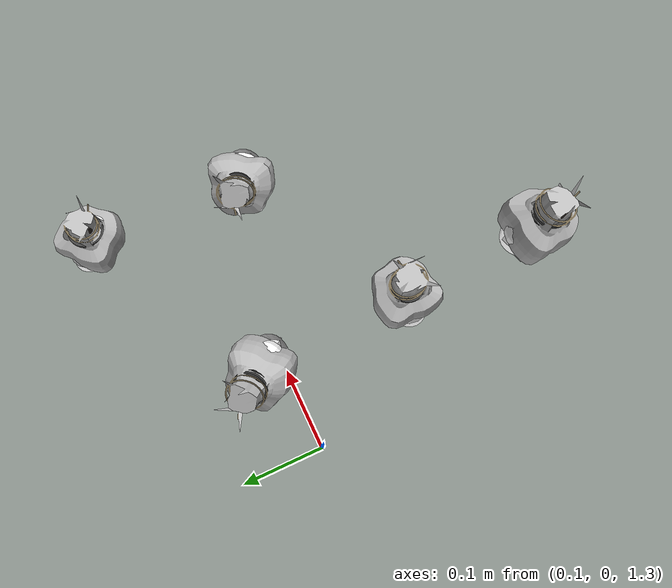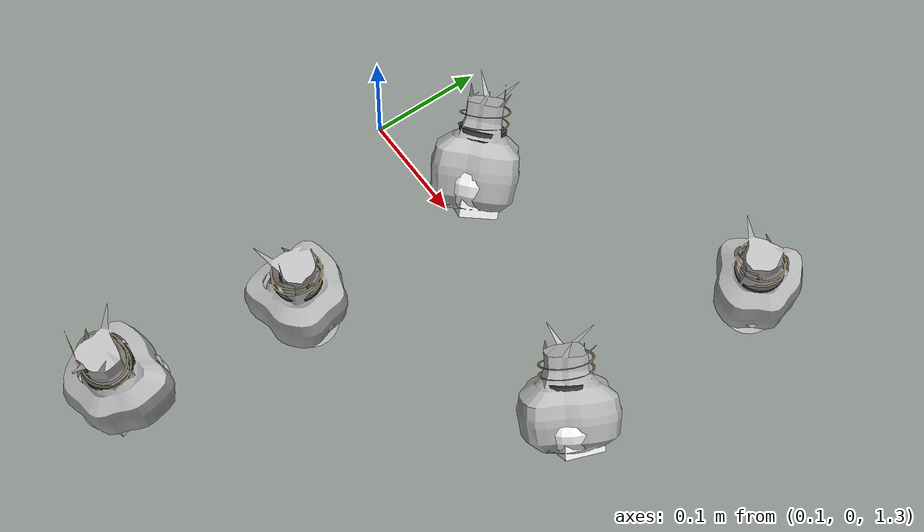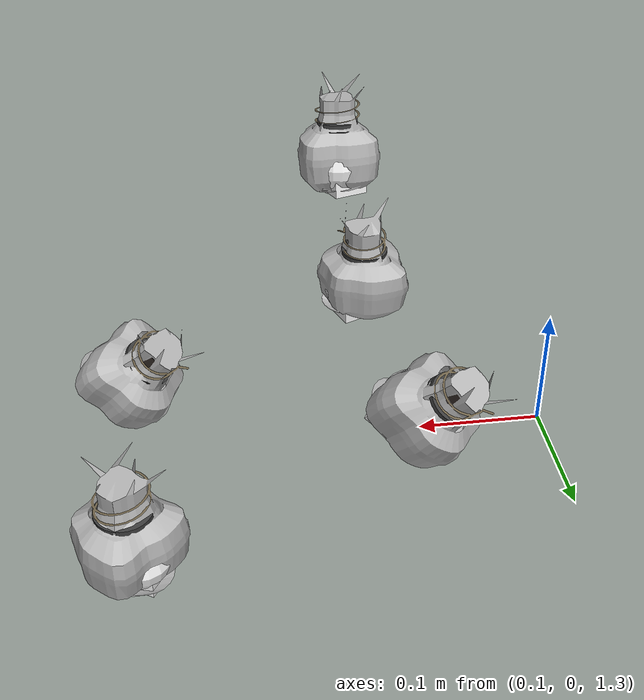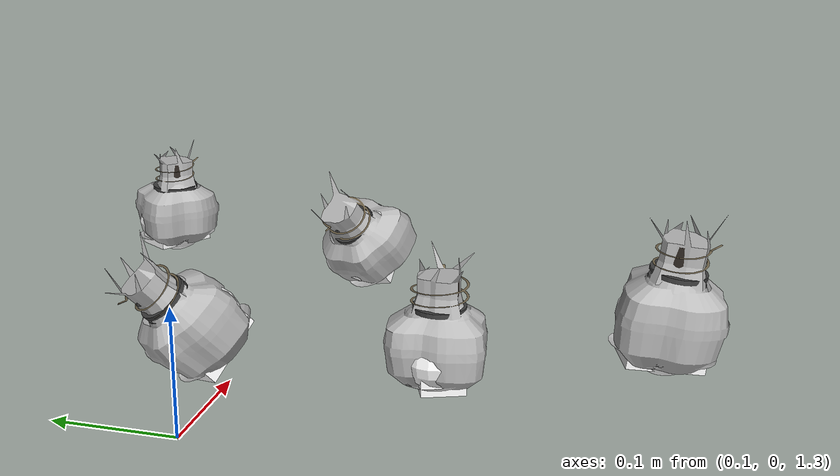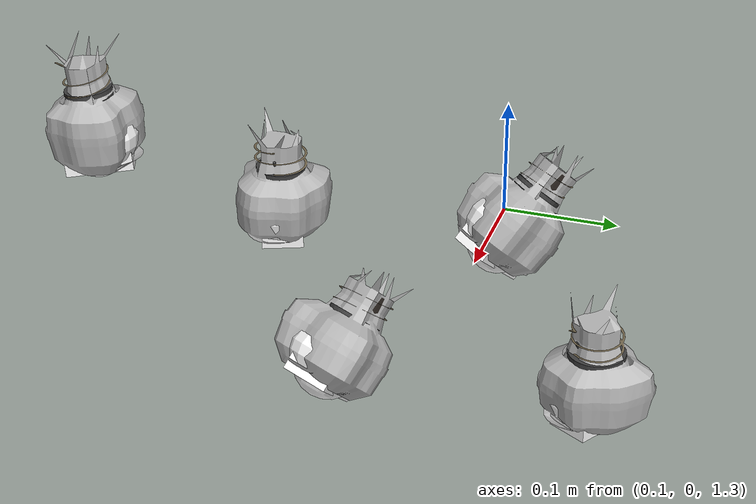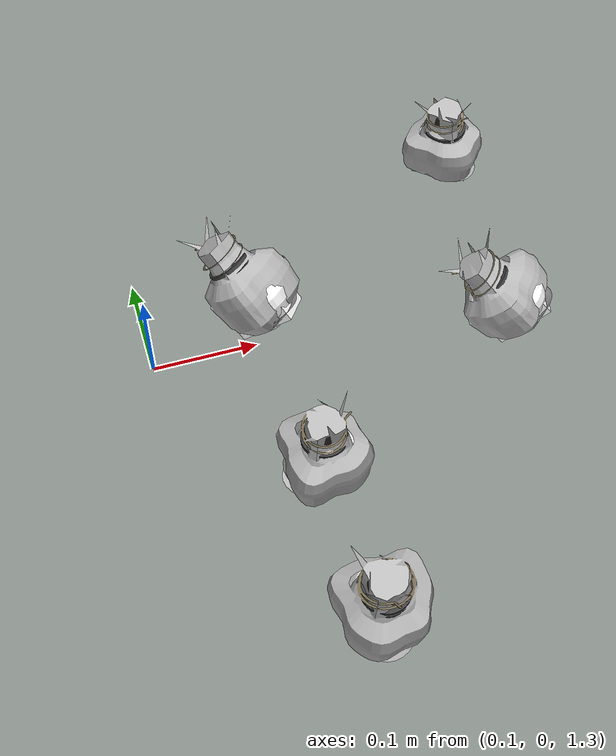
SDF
<sdf version="1.11">
 <world name="peach_orchard">
  <model name="ground">
   <static>true</static>
   <link name="link">
    <visual name="soil">
     <geometry><plane><normal>0 0 1</normal><size>32 22</size></plane></geometry>
     <material>
      <ambient>1 1 1 1</ambient>
      <diffuse>1 1 1 1</diffuse>
      <specular>0.1 0.1 0.1 1</specular>
      <pbr>
       <metal>
        <albedo_map>textures/soil_albedo.png</albedo_map>
        <normal_map type="tangent">textures/soil_normal.png</normal_map>
        <roughness>0.95</roughness>
        <metalness>0</metalness>
       </metal>
      </pbr>
     </material>
    </visual>
    <collision name="c_soil">
     <geometry><plane><normal>0 0 1</normal><size>32 22</size></plane></geometry>
    </collision>
   </link>
  </model>
  <model name="peach_tree_r2_t3_00">
   <pose>0.432889 0.147746 1.3245 0 0.0119992 -0.893221</pose>
   <static>true</static>
   <link name="bag">
    <visual name="bag_mesh">
     <pose>0 0 0.0400128 0 0 -0</pose>
     <geometry>
      <mesh><uri>model://peach_sim/meshes/bagged_peach.glb</uri><scale>0.931084 1.05038 0.909381</scale></mesh>
     </geometry>
    </visual>
    <visual name="body">
     <pose>0 0 0.0220128 0 0 0</pose>
     <geometry><ellipsoid><radii>0.0349157 0.0273099 0.0237738</radii></ellipsoid></geometry>
     <material>
      <ambient>1 1 1 1</ambient>
      <diffuse>1 1 1 1</diffuse>
      <specular>0.1 0.1 0.1 1</specular>
      <pbr>
       <metal>
        <albedo_map>textures/paper_bag_albedo.png</albedo_map>
        <normal_map type="tangent">textures/paper_bag_normal.png</normal_map>
        <roughness>0.72</roughness>
        <metalness>0</metalness>
       </metal>
      </pbr>
     </material>
    </visual>
    <visual name="bottom_fold">
     <pose>0 0 0.012 0 0 0.35</pose>
     <geometry><box><size>0.0541193 0.0314064 0.022</size></box></geometry>
     <material>
      <ambient>1 1 1 1</ambient>
      <diffuse>1 1 1 1</diffuse>
      <specular>0.1 0.1 0.1 1</specular>
      <pbr>
       <metal>
        <albedo_map>textures/paper_bag_albedo.png</albedo_map>
        <normal_map type="tangent">textures/paper_bag_normal.png</normal_map>
        <roughness>0.8</roughness>
        <metalness>0</metalness>
       </metal>
      </pbr>
     </material>
    </visual>
    <visual name="fruit">
     <pose>0 0 0.0206104 0 0 0</pose>
     <geometry><sphere><radius>0.0276748</radius></sphere></geometry>
     <material>
      <ambient>1 1 1 1</ambient>
      <diffuse>1 1 1 1</diffuse>
      <specular>0.1 0.1 0.1 1</specular>
      <pbr>
       <metal>
        <albedo_map>textures/fruit_skin_albedo.png</albedo_map>
        <normal_map type="tangent">textures/fruit_skin_normal.png</normal_map>
        <roughness>0.55</roughness>
        <metalness>0</metalness>
       </metal>
      </pbr>
     </material>
    </visual>
    <visual name="neck">
     <pose>0 0 0.0530255 0 0 0</pose>
     <geometry><cylinder><radius>0.013</radius><length>0.018</length></cylinder></geometry>
     <material>
      <ambient>1 1 1 1</ambient>
      <diffuse>1 1 1 1</diffuse>
      <specular>0.1 0.1 0.1 1</specular>
      <pbr>
       <metal>
        <albedo_map>textures/paper_bag_albedo.png</albedo_map>
        <normal_map type="tangent">textures/paper_bag_normal.png</normal_map>
        <roughness>0.75</roughness>
        <metalness>0</metalness>
       </metal>
      </pbr>
     </material>
    </visual>
    <visual name="gather">
     <pose>0 0 0.0340255 0 0 0</pose>
     <geometry><cylinder><radius>0.019</radius><length>0.02</length></cylinder></geometry>
     <material>
      <ambient>1 1 1 1</ambient>
      <diffuse>1 1 1 1</diffuse>
      <specular>0.1 0.1 0.1 1</specular>
      <pbr>
       <metal>
        <albedo_map>textures/paper_bag_albedo.png</albedo_map>
        <normal_map type="tangent">textures/paper_bag_normal.png</normal_map>
        <roughness>0.8</roughness>
        <metalness>0</metalness>
       </metal>
      </pbr>
     </material>
    </visual>
    <visual name="inner_paper">
     <pose>0 0 0.0580255 0 0 0</pose>
     <geometry><cylinder><radius>0.01</radius><length>0.008</length></cylinder></geometry>
     <material>
      <ambient>0.180392 0.14902 0.133333 1</ambient>
      <diffuse>0.180392 0.14902 0.133333 1</diffuse>
      <specular>0.1 0.1 0.1 1</specular>
     </material>
    </visual>
    <visual name="wire_0">
     <pose>0 0 0.0480255 0 0 0</pose>
     <geometry><cylinder><radius>0.0205</radius><length>0.0035</length></cylinder></geometry>
     <material>
      <ambient>0.25 0.25 0.25 1</ambient>
      <diffuse>0.25 0.25 0.25 1</diffuse>
      <specular>0.1 0.1 0.1 1</specular>
     </material>
    </visual>
    <visual name="wire_1">
     <pose>0 0 0.0550255 0 0 0</pose>
     <geometry><cylinder><radius>0.0205</radius><length>0.0035</length></cylinder></geometry>
     <material>
      <ambient>0.25 0.25 0.25 1</ambient>
      <diffuse>0.25 0.25 0.25 1</diffuse>
      <specular>0.1 0.1 0.1 1</specular>
     </material>
    </visual>
    <visual name="wire_tail">
     <pose>0.01 0 0.0560255 0 0.521618 0</pose>
     <geometry><cylinder><radius>0.0012</radius><length>0.026</length></cylinder></geometry>
     <material>
      <ambient>0.25 0.25 0.25 1</ambient>
      <diffuse>0.25 0.25 0.25 1</diffuse>
      <specular>0.1 0.1 0.1 1</specular>
     </material>
    </visual>
    <collision name="c_body">
     <pose>0 0 0.0220128 0 0 0</pose>
     <geometry><cylinder><radius>0.0349157</radius><length>0.0440255</length></cylinder></geometry>
    </collision>
   </link>
  </model>
  <model name="peach_tree_r2_t3_01">
   <pose>0.448265 -0.0536551 1.32065 0 0.729922 2.61008</pose>
   <static>true</static>
   <link name="bag">
    <visual name="bag_mesh">
     <pose>0 0 0.0408624 0 0 0</pose>
     <geometry>
      <mesh><uri>model://peach_sim/meshes/bagged_peach.glb</uri><scale>0.970255 1.19225 0.928691</scale></mesh>
     </geometry>
    </visual>
    <visual name="body">
     <pose>0 0 0.0228624 0 0 0</pose>
     <geometry><ellipsoid><radii>0.0363846 0.0309986 0.0246914</radii></ellipsoid></geometry>
     <material>
      <ambient>1 1 1 1</ambient>
      <diffuse>1 1 1 1</diffuse>
      <specular>0.1 0.1 0.1 1</specular>
      <pbr>
       <metal>
        <albedo_map>textures/paper_bag_albedo.png</albedo_map>
        <normal_map type="tangent">textures/paper_bag_normal.png</normal_map>
        <roughness>0.72</roughness>
        <metalness>0</metalness>
       </metal>
      </pbr>
     </material>
    </visual>
    <visual name="bottom_fold">
     <pose>0 0 0.012 0 0 0.35</pose>
     <geometry><box><size>0.0563961 0.0356484 0.022</size></box></geometry>
     <material>
      <ambient>1 1 1 1</ambient>
      <diffuse>1 1 1 1</diffuse>
      <specular>0.1 0.1 0.1 1</specular>
      <pbr>
       <metal>
        <albedo_map>textures/paper_bag_albedo.png</albedo_map>
        <normal_map type="tangent">textures/paper_bag_normal.png</normal_map>
        <roughness>0.8</roughness>
        <metalness>0</metalness>
       </metal>
      </pbr>
     </material>
    </visual>
    <visual name="fruit">
     <pose>0 0 0.0197073 0 0 0</pose>
     <geometry><sphere><radius>0.0267356</radius></sphere></geometry>
     <material>
      <ambient>1 1 1 1</ambient>
      <diffuse>1 1 1 1</diffuse>
      <specular>0.1 0.1 0.1 1</specular>
      <pbr>
       <metal>
        <albedo_map>textures/fruit_skin_albedo.png</albedo_map>
        <normal_map type="tangent">textures/fruit_skin_normal.png</normal_map>
        <roughness>0.55</roughness>
        <metalness>0</metalness>
       </metal>
      </pbr>
     </material>
    </visual>
    <visual name="neck">
     <pose>0 0 0.0547248 0 0 0</pose>
     <geometry><cylinder><radius>0.013</radius><length>0.018</length></cylinder></geometry>
     <material>
      <ambient>1 1 1 1</ambient>
      <diffuse>1 1 1 1</diffuse>
      <specular>0.1 0.1 0.1 1</specular>
      <pbr>
       <metal>
        <albedo_map>textures/paper_bag_albedo.png</albedo_map>
        <normal_map type="tangent">textures/paper_bag_normal.png</normal_map>
        <roughness>0.75</roughness>
        <metalness>0</metalness>
       </metal>
      </pbr>
     </material>
    </visual>
    <visual name="gather">
     <pose>0 0 0.0357248 0 0 0</pose>
     <geometry><cylinder><radius>0.019</radius><length>0.02</length></cylinder></geometry>
     <material>
      <ambient>1 1 1 1</ambient>
      <diffuse>1 1 1 1</diffuse>
      <specular>0.1 0.1 0.1 1</specular>
      <pbr>
       <metal>
        <albedo_map>textures/paper_bag_albedo.png</albedo_map>
        <normal_map type="tangent">textures/paper_bag_normal.png</normal_map>
        <roughness>0.8</roughness>
        <metalness>0</metalness>
       </metal>
      </pbr>
     </material>
    </visual>
    <visual name="inner_paper">
     <pose>0 0 0.0597248 0 0 0</pose>
     <geometry><cylinder><radius>0.01</radius><length>0.008</length></cylinder></geometry>
     <material>
      <ambient>0.180392 0.14902 0.133333 1</ambient>
      <diffuse>0.180392 0.14902 0.133333 1</diffuse>
      <specular>0.1 0.1 0.1 1</specular>
     </material>
    </visual>
    <visual name="wire_0">
     <pose>0 0 0.0497248 0 0 0</pose>
     <geometry><cylinder><radius>0.0205</radius><length>0.0035</length></cylinder></geometry>
     <material>
      <ambient>0.25 0.25 0.25 1</ambient>
      <diffuse>0.25 0.25 0.25 1</diffuse>
      <specular>0.1 0.1 0.1 1</specular>
     </material>
    </visual>
    <visual name="wire_1">
     <pose>0 0 0.0567248 0 0 0</pose>
     <geometry><cylinder><radius>0.0205</radius><length>0.0035</length></cylinder></geometry>
     <material>
      <ambient>0.25 0.25 0.25 1</ambient>
      <diffuse>0.25 0.25 0.25 1</diffuse>
      <specular>0.1 0.1 0.1 1</specular>
     </material>
    </visual>
    <visual name="wire_tail">
     <pose>0.01 0 0.0577248 0 0.521618 0</pose>
     <geometry><cylinder><radius>0.0012</radius><length>0.026</length></cylinder></geometry>
     <material>
      <ambient>0.25 0.25 0.25 1</ambient>
      <diffuse>0.25 0.25 0.25 1</diffuse>
      <specular>0.1 0.1 0.1 1</specular>
     </material>
    </visual>
    <collision name="c_body">
     <pose>0 0 0.0228624 0 0 0</pose>
     <geometry><cylinder><radius>0.0363846</radius><length>0.0457248</length></cylinder></geometry>
    </collision>
   </link>
  </model>
  <model name="peach_tree_r2_t3_07">
   <pose>0.22 0.0128864 1.31573 0 0.729116 2.31192</pose>
   <static>true</static>
   <link name="bag">
    <visual name="bag_mesh">
     <pose>0 0 0.0481572 0 0 0</pose>
     <geometry>
      <mesh><uri>model://peach_sim/meshes/bagged_peach.glb</uri><scale>1.0124 1.12521 1.09448</scale></mesh>
     </geometry>
    </visual>
    <visual name="body">
     <pose>0 0 0.0301572 0 0 0</pose>
     <geometry><ellipsoid><radii>0.0379649 0.0292556 0.0325698</radii></ellipsoid></geometry>
     <material>
      <ambient>1 1 1 1</ambient>
      <diffuse>1 1 1 1</diffuse>
      <specular>0.1 0.1 0.1 1</specular>
      <pbr>
       <metal>
        <albedo_map>textures/paper_bag_albedo.png</albedo_map>
        <normal_map type="tangent">textures/paper_bag_normal.png</normal_map>
        <roughness>0.72</roughness>
        <metalness>0</metalness>
       </metal>
      </pbr>
     </material>
    </visual>
    <visual name="bottom_fold">
     <pose>0 0 0.012 0 0 0.35</pose>
     <geometry><box><size>0.0588456 0.0336439 0.022</size></box></geometry>
     <material>
      <ambient>1 1 1 1</ambient>
      <diffuse>1 1 1 1</diffuse>
      <specular>0.1 0.1 0.1 1</specular>
      <pbr>
       <metal>
        <albedo_map>textures/paper_bag_albedo.png</albedo_map>
        <normal_map type="tangent">textures/paper_bag_normal.png</normal_map>
        <roughness>0.8</roughness>
        <metalness>0</metalness>
       </metal>
      </pbr>
     </material>
    </visual>
    <visual name="fruit">
     <pose>0 0 0.0183397 0 0 0</pose>
     <geometry><sphere><radius>0.0253133</radius></sphere></geometry>
     <material>
      <ambient>1 1 1 1</ambient>
      <diffuse>1 1 1 1</diffuse>
      <specular>0.1 0.1 0.1 1</specular>
      <pbr>
       <metal>
        <albedo_map>textures/fruit_skin_albedo.png</albedo_map>
        <normal_map type="tangent">textures/fruit_skin_normal.png</normal_map>
        <roughness>0.55</roughness>
        <metalness>0</metalness>
       </metal>
      </pbr>
     </material>
    </visual>
    <visual name="neck">
     <pose>0 0 0.0693144 0 0 0</pose>
     <geometry><cylinder><radius>0.013</radius><length>0.018</length></cylinder></geometry>
     <material>
      <ambient>1 1 1 1</ambient>
      <diffuse>1 1 1 1</diffuse>
      <specular>0.1 0.1 0.1 1</specular>
      <pbr>
       <metal>
        <albedo_map>textures/paper_bag_albedo.png</albedo_map>
        <normal_map type="tangent">textures/paper_bag_normal.png</normal_map>
        <roughness>0.75</roughness>
        <metalness>0</metalness>
       </metal>
      </pbr>
     </material>
    </visual>
    <visual name="gather">
     <pose>0 0 0.0503144 0 0 0</pose>
     <geometry><cylinder><radius>0.019</radius><length>0.02</length></cylinder></geometry>
     <material>
      <ambient>1 1 1 1</ambient>
      <diffuse>1 1 1 1</diffuse>
      <specular>0.1 0.1 0.1 1</specular>
      <pbr>
       <metal>
        <albedo_map>textures/paper_bag_albedo.png</albedo_map>
        <normal_map type="tangent">textures/paper_bag_normal.png</normal_map>
        <roughness>0.8</roughness>
        <metalness>0</metalness>
       </metal>
      </pbr>
     </material>
    </visual>
    <visual name="inner_paper">
     <pose>0 0 0.0743144 0 0 0</pose>
     <geometry><cylinder><radius>0.01</radius><length>0.008</length></cylinder></geometry>
     <material>
      <ambient>0.180392 0.14902 0.133333 1</ambient>
      <diffuse>0.180392 0.14902 0.133333 1</diffuse>
      <specular>0.1 0.1 0.1 1</specular>
     </material>
    </visual>
    <visual name="wire_0">
     <pose>0 0 0.0643144 0 0 0</pose>
     <geometry><cylinder><radius>0.0205</radius><length>0.0035</length></cylinder></geometry>
     <material>
      <ambient>0.25 0.25 0.25 1</ambient>
      <diffuse>0.25 0.25 0.25 1</diffuse>
      <specular>0.1 0.1 0.1 1</specular>
     </material>
    </visual>
    <visual name="wire_1">
     <pose>0 0 0.0713144 0 0 0</pose>
     <geometry><cylinder><radius>0.0205</radius><length>0.0035</length></cylinder></geometry>
     <material>
      <ambient>0.25 0.25 0.25 1</ambient>
      <diffuse>0.25 0.25 0.25 1</diffuse>
      <specular>0.1 0.1 0.1 1</specular>
     </material>
    </visual>
    <visual name="wire_tail">
     <pose>0.01 0 0.0723144 0 0.521618 0</pose>
     <geometry><cylinder><radius>0.0012</radius><length>0.026</length></cylinder></geometry>
     <material>
      <ambient>0.25 0.25 0.25 1</ambient>
      <diffuse>0.25 0.25 0.25 1</diffuse>
      <specular>0.1 0.1 0.1 1</specular>
     </material>
    </visual>
    <collision name="c_body">
     <pose>0 0 0.0301572 0 0 0</pose>
     <geometry><cylinder><radius>0.0379649</radius><length>0.0603144</length></cylinder></geometry>
    </collision>
   </link>
  </model>
  <model name="peach_tree_r2_t3_08">
   <pose>0.22 -0.161896 1.31108 0 0.00292688 0.0273397</pose>
   <static>true</static>
   <link name="bag">
    <visual name="bag_mesh">
     <pose>0 0 0.0430792 0 0 0</pose>
     <geometry>
      <mesh><uri>model://peach_sim/meshes/bagged_peach.glb</uri><scale>0.987207 1.14265 0.979074</scale></mesh>
     </geometry>
    </visual>
    <visual name="body">
     <pose>0 0 0.0250792 0 0 0</pose>
     <geometry><ellipsoid><radii>0.0370203 0.0297088 0.0270856</radii></ellipsoid></geometry>
     <material>
      <ambient>1 1 1 1</ambient>
      <diffuse>1 1 1 1</diffuse>
      <specular>0.1 0.1 0.1 1</specular>
      <pbr>
       <metal>
        <albedo_map>textures/paper_bag_albedo.png</albedo_map>
        <normal_map type="tangent">textures/paper_bag_normal.png</normal_map>
        <roughness>0.72</roughness>
        <metalness>0</metalness>
       </metal>
      </pbr>
     </material>
    </visual>
    <visual name="bottom_fold">
     <pose>0 0 0.012 0 0 0.35</pose>
     <geometry><box><size>0.0573814 0.0341651 0.022</size></box></geometry>
     <material>
      <ambient>1 1 1 1</ambient>
      <diffuse>1 1 1 1</diffuse>
      <specular>0.1 0.1 0.1 1</specular>
      <pbr>
       <metal>
        <albedo_map>textures/paper_bag_albedo.png</albedo_map>
        <normal_map type="tangent">textures/paper_bag_normal.png</normal_map>
        <roughness>0.8</roughness>
        <metalness>0</metalness>
       </metal>
      </pbr>
     </material>
    </visual>
    <visual name="fruit">
     <pose>0 0 0.0173056 0 0 0</pose>
     <geometry><sphere><radius>0.0242378</radius></sphere></geometry>
     <material>
      <ambient>1 1 1 1</ambient>
      <diffuse>1 1 1 1</diffuse>
      <specular>0.1 0.1 0.1 1</specular>
      <pbr>
       <metal>
        <albedo_map>textures/fruit_skin_albedo.png</albedo_map>
        <normal_map type="tangent">textures/fruit_skin_normal.png</normal_map>
        <roughness>0.55</roughness>
        <metalness>0</metalness>
       </metal>
      </pbr>
     </material>
    </visual>
    <visual name="neck">
     <pose>0 0 0.0591585 0 0 0</pose>
     <geometry><cylinder><radius>0.013</radius><length>0.018</length></cylinder></geometry>
     <material>
      <ambient>1 1 1 1</ambient>
      <diffuse>1 1 1 1</diffuse>
      <specular>0.1 0.1 0.1 1</specular>
      <pbr>
       <metal>
        <albedo_map>textures/paper_bag_albedo.png</albedo_map>
        <normal_map type="tangent">textures/paper_bag_normal.png</normal_map>
        <roughness>0.75</roughness>
        <metalness>0</metalness>
       </metal>
      </pbr>
     </material>
    </visual>
    <visual name="gather">
     <pose>0 0 0.0401585 0 0 0</pose>
     <geometry><cylinder><radius>0.019</radius><length>0.02</length></cylinder></geometry>
     <material>
      <ambient>1 1 1 1</ambient>
      <diffuse>1 1 1 1</diffuse>
      <specular>0.1 0.1 0.1 1</specular>
      <pbr>
       <metal>
        <albedo_map>textures/paper_bag_albedo.png</albedo_map>
        <normal_map type="tangent">textures/paper_bag_normal.png</normal_map>
        <roughness>0.8</roughness>
        <metalness>0</metalness>
       </metal>
      </pbr>
     </material>
    </visual>
    <visual name="inner_paper">
     <pose>0 0 0.0641585 0 0 0</pose>
     <geometry><cylinder><radius>0.01</radius><length>0.008</length></cylinder></geometry>
     <material>
      <ambient>0.180392 0.14902 0.133333 1</ambient>
      <diffuse>0.180392 0.14902 0.133333 1</diffuse>
      <specular>0.1 0.1 0.1 1</specular>
     </material>
    </visual>
    <visual name="wire_0">
     <pose>0 0 0.0541585 0 0 0</pose>
     <geometry><cylinder><radius>0.0205</radius><length>0.0035</length></cylinder></geometry>
     <material>
      <ambient>0.25 0.25 0.25 1</ambient>
      <diffuse>0.25 0.25 0.25 1</diffuse>
      <specular>0.1 0.1 0.1 1</specular>
     </material>
    </visual>
    <visual name="wire_1">
     <pose>0 0 0.0611585 0 0 0</pose>
     <geometry><cylinder><radius>0.0205</radius><length>0.0035</length></cylinder></geometry>
     <material>
      <ambient>0.25 0.25 0.25 1</ambient>
      <diffuse>0.25 0.25 0.25 1</diffuse>
      <specular>0.1 0.1 0.1 1</specular>
     </material>
    </visual>
    <visual name="wire_tail">
     <pose>0.01 0 0.0621585 0 0.521618 0</pose>
     <geometry><cylinder><radius>0.0012</radius><length>0.026</length></cylinder></geometry>
     <material>
      <ambient>0.25 0.25 0.25 1</ambient>
      <diffuse>0.25 0.25 0.25 1</diffuse>
      <specular>0.1 0.1 0.1 1</specular>
     </material>
    </visual>
    <collision name="c_body">
     <pose>0 0 0.0250792 0 0 0</pose>
     <geometry><cylinder><radius>0.0370203</radius><length>0.0501585</length></cylinder></geometry>
    </collision>
   </link>
  </model>
  <model name="peach_tree_r2_t3_09">
   <pose>0.22 -0.324308 1.34727 0 0.123461 -1.58237</pose>
   <static>true</static>
   <link name="bag">
    <visual name="bag_mesh">
     <pose>0 0 0.0479927 0 0 -0</pose>
     <geometry>
      <mesh><uri>model://peach_sim/meshes/bagged_peach.glb</uri><scale>0.994805 1.15797 1.09074</scale></mesh>
     </geometry>
    </visual>
    <visual name="body">
     <pose>0 0 0.0299927 0 0 0</pose>
     <geometry><ellipsoid><radii>0.0373052 0.0301072 0.0323921</radii></ellipsoid></geometry>
     <material>
      <ambient>1 1 1 1</ambient>
      <diffuse>1 1 1 1</diffuse>
      <specular>0.1 0.1 0.1 1</specular>
      <pbr>
       <metal>
        <albedo_map>textures/paper_bag_albedo.png</albedo_map>
        <normal_map type="tangent">textures/paper_bag_normal.png</normal_map>
        <roughness>0.72</roughness>
        <metalness>0</metalness>
       </metal>
      </pbr>
     </material>
    </visual>
    <visual name="bottom_fold">
     <pose>0 0 0.012 0 0 0.35</pose>
     <geometry><box><size>0.0578231 0.0346233 0.022</size></box></geometry>
     <material>
      <ambient>1 1 1 1</ambient>
      <diffuse>1 1 1 1</diffuse>
      <specular>0.1 0.1 0.1 1</specular>
      <pbr>
       <metal>
        <albedo_map>textures/paper_bag_albedo.png</albedo_map>
        <normal_map type="tangent">textures/paper_bag_normal.png</normal_map>
        <roughness>0.8</roughness>
        <metalness>0</metalness>
       </metal>
      </pbr>
     </material>
    </visual>
    <visual name="fruit">
     <pose>0 0 0.0207841 0 0 0</pose>
     <geometry><sphere><radius>0.0278555</radius></sphere></geometry>
     <material>
      <ambient>1 1 1 1</ambient>
      <diffuse>1 1 1 1</diffuse>
      <specular>0.1 0.1 0.1 1</specular>
      <pbr>
       <metal>
        <albedo_map>textures/fruit_skin_albedo.png</albedo_map>
        <normal_map type="tangent">textures/fruit_skin_normal.png</normal_map>
        <roughness>0.55</roughness>
        <metalness>0</metalness>
       </metal>
      </pbr>
     </material>
    </visual>
    <visual name="neck">
     <pose>0 0 0.0689853 0 0 0</pose>
     <geometry><cylinder><radius>0.013</radius><length>0.018</length></cylinder></geometry>
     <material>
      <ambient>1 1 1 1</ambient>
      <diffuse>1 1 1 1</diffuse>
      <specular>0.1 0.1 0.1 1</specular>
      <pbr>
       <metal>
        <albedo_map>textures/paper_bag_albedo.png</albedo_map>
        <normal_map type="tangent">textures/paper_bag_normal.png</normal_map>
        <roughness>0.75</roughness>
        <metalness>0</metalness>
       </metal>
      </pbr>
     </material>
    </visual>
    <visual name="gather">
     <pose>0 0 0.0499853 0 0 0</pose>
     <geometry><cylinder><radius>0.019</radius><length>0.02</length></cylinder></geometry>
     <material>
      <ambient>1 1 1 1</ambient>
      <diffuse>1 1 1 1</diffuse>
      <specular>0.1 0.1 0.1 1</specular>
      <pbr>
       <metal>
        <albedo_map>textures/paper_bag_albedo.png</albedo_map>
        <normal_map type="tangent">textures/paper_bag_normal.png</normal_map>
        <roughness>0.8</roughness>
        <metalness>0</metalness>
       </metal>
      </pbr>
     </material>
    </visual>
    <visual name="inner_paper">
     <pose>0 0 0.0739853 0 0 0</pose>
     <geometry><cylinder><radius>0.01</radius><length>0.008</length></cylinder></geometry>
     <material>
      <ambient>0.180392 0.14902 0.133333 1</ambient>
      <diffuse>0.180392 0.14902 0.133333 1</diffuse>
      <specular>0.1 0.1 0.1 1</specular>
     </material>
    </visual>
    <visual name="wire_0">
     <pose>0 0 0.0639853 0 0 0</pose>
     <geometry><cylinder><radius>0.0205</radius><length>0.0035</length></cylinder></geometry>
     <material>
      <ambient>0.25 0.25 0.25 1</ambient>
      <diffuse>0.25 0.25 0.25 1</diffuse>
      <specular>0.1 0.1 0.1 1</specular>
     </material>
    </visual>
    <visual name="wire_1">
     <pose>0 0 0.0709853 0 0 0</pose>
     <geometry><cylinder><radius>0.0205</radius><length>0.0035</length></cylinder></geometry>
     <material>
      <ambient>0.25 0.25 0.25 1</ambient>
      <diffuse>0.25 0.25 0.25 1</diffuse>
      <specular>0.1 0.1 0.1 1</specular>
     </material>
    </visual>
    <visual name="wire_tail">
     <pose>0.01 0 0.0719853 0 0.521618 0</pose>
     <geometry><cylinder><radius>0.0012</radius><length>0.026</length></cylinder></geometry>
     <material>
      <ambient>0.25 0.25 0.25 1</ambient>
      <diffuse>0.25 0.25 0.25 1</diffuse>
      <specular>0.1 0.1 0.1 1</specular>
     </material>
    </visual>
    <collision name="c_body">
     <pose>0 0 0.0299927 0 0 0</pose>
     <geometry><cylinder><radius>0.0373052</radius><length>0.0599853</length></cylinder></geometry>
    </collision>
   </link>
  </model>
 </world>
</sdf>
